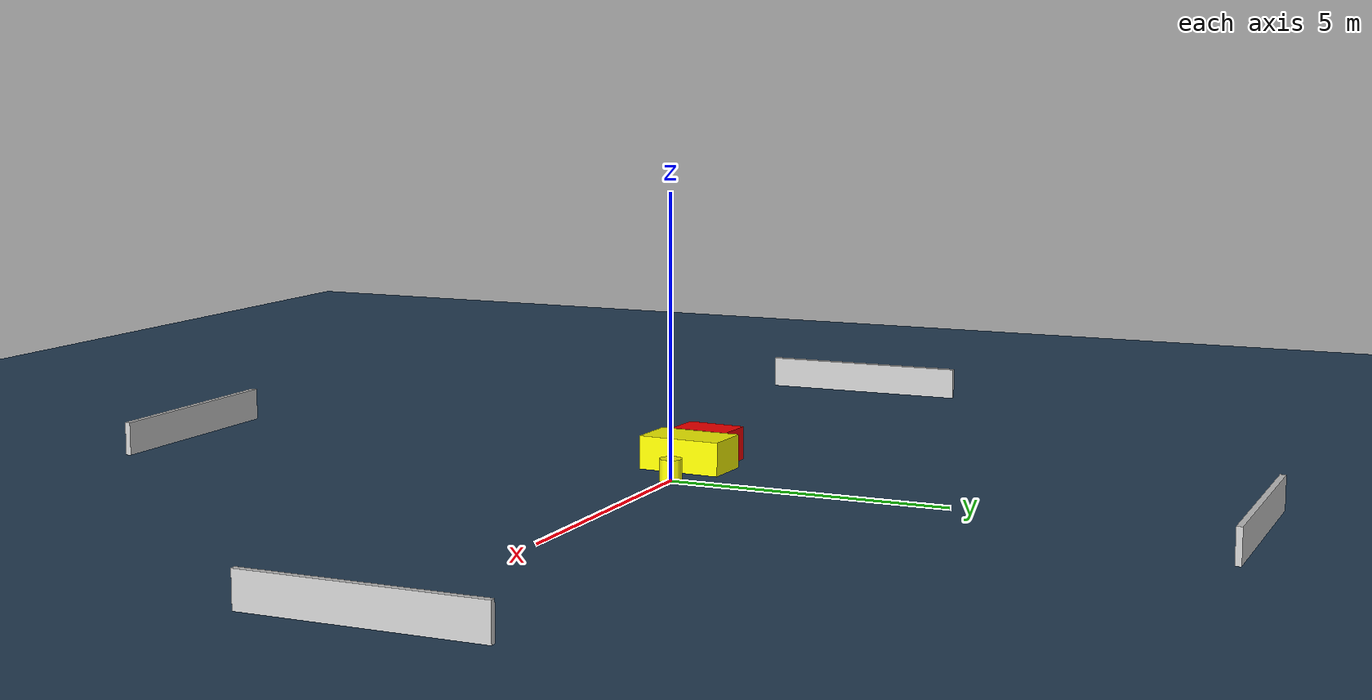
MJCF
<?xml version="1.0" ?>
<mujoco model="generated_environment">
  <option timestep="0.01" integrator="RK4" cone="elliptic"/>
  <default>
    <geom density="1"/>
  </default>
  <asset>
    <texture builtin="gradient" height="3072" name="skybox" rgb1="0.3 0.5 0.7" rgb2="0 0 0" type="skybox" width="512"/>
    <texture builtin="checker" height="300" name="groundplane" rgb1="0.2 0.3 0.4" rgb2="0.1 0.2 0.3" type="2d" width="300"/>
    <material name="groundplane" reflectance="0.2" texrepeat="5 5" texture="groundplane"/>
  </asset>
  <worldbody>
    <light dir="0 0 -1" directional="true" pos="0 0 1.5"/>
    <geom condim="3" friction="0.5 0.005 0.001" material="groundplane" name="floor" pos="0 0 0" size="0 0 0.05" type="plane"/>
    <body name="walls">
      <geom name="wall_1" condim="4" pos="-10.0 0.0 0.3" rgba="0.800000011920929 0.800000011920929 0.800000011920929 1.0" size="0.05 2.0 0.3" type="box"/>
      <geom name="wall_2" condim="4" pos="10.0 0.0 0.3" rgba="0.800000011920929 0.800000011920929 0.800000011920929 1.0" size="0.05 2.0 0.3" type="box"/>
      <geom name="wall_3" condim="4" pos="0.0 -10.0 0.3" rgba="0.800000011920929 0.800000011920929 0.800000011920929 1.0" size="2.0 0.05 0.3" type="box"/>
      <geom name="wall_4" condim="4" pos="0.0 10.0 0.3" rgba="0.800000011920929 0.800000011920929 0.800000011920929 1.0" size="2.0 0.05 0.3" type="box"/>
    </body>
    <body name="robot">
      <joint name="joint_x" type="slide" pos="0 0 0" axis="1 0 0"/>
      <joint name="joint_y" type="slide" pos="0 0 0" axis="0 1 0"/>
      <geom name="robot" type="cylinder" pos="0.0 0.0 0.2" size="0.2 0.2 0.0" mass="5.0" friction="1.0 0.005 0.0001" condim="4" rgba="1.0 1.0 0.0 1.0"/>
    </body>
    <body name="obstacle_1_movable">
      <geom name="obstacle_1_movable" condim="4" pos="-1.1240679140340302 -0.15057027933074638 0.3" euler="0 0 87.31712618877468" friction="0.0 0.005 0.001" rgba="1.0 1.0 0.0 1.0" size="0.7579531311399226 0.44271525570387 0.3" type="box" mass="0.1"/>
      <joint type="free"/>
    </body>
    <body name="obstacle_2_static">
      <geom name="obstacle_2_static" condim="4" pos="-1.9540947577262988 -0.14356052006481013 0.3" euler="0 0 355.4345317259665" friction="0.0 0.005 0.001" rgba="1.0 0.0 0.0 1.0" size="0.3611745588845746 0.5393010874159456 0.3" type="box"/>
    </body>
  </worldbody>
  <actuator>
    <motor name="actuator_x" joint="joint_x" gear="1" ctrlrange="-1 1"/>
    <motor name="actuator_y" joint="joint_y" gear="1" ctrlrange="-1 1"/>
  </actuator>
</mujoco>
